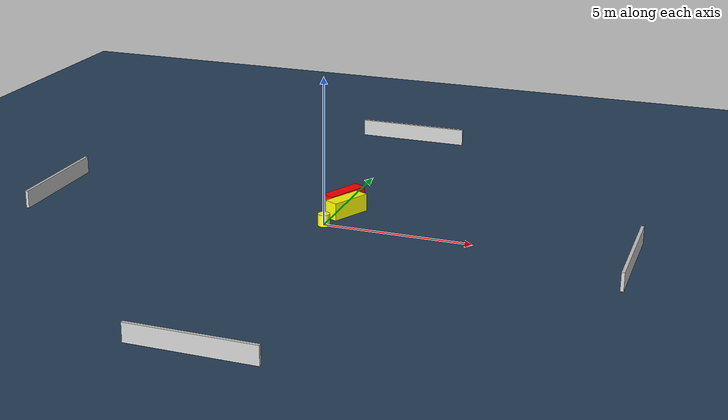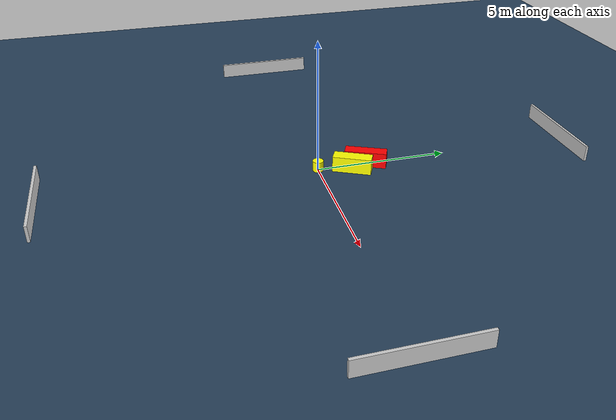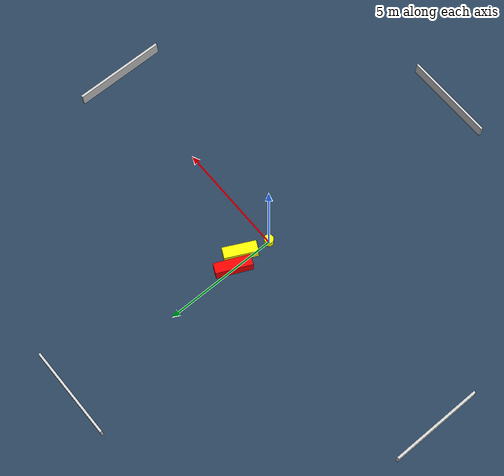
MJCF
<?xml version="1.0" ?>
<mujoco model="generated_environment">
  <option timestep="0.01" integrator="RK4" cone="elliptic"/>
  <default>
    <geom density="1"/>
  </default>
  <asset>
    <texture builtin="gradient" height="3072" name="skybox" rgb1="0.3 0.5 0.7" rgb2="0 0 0" type="skybox" width="512"/>
    <texture builtin="checker" height="300" name="groundplane" rgb1="0.2 0.3 0.4" rgb2="0.1 0.2 0.3" type="2d" width="300"/>
    <material name="groundplane" reflectance="0.2" texrepeat="5 5" texture="groundplane"/>
  </asset>
  <worldbody>
    <light dir="0 0 -1" directional="true" pos="0 0 1.5"/>
    <geom condim="3" friction="0.5 0.005 0.001" material="groundplane" name="floor" pos="0 0 0" size="0 0 0.05" type="plane"/>
    <body name="walls">
      <geom name="wall_1" condim="4" pos="-10.0 0.0 0.3" rgba="0.800000011920929 0.800000011920929 0.800000011920929 1.0" size="0.05 2.0 0.3" type="box"/>
      <geom name="wall_2" condim="4" pos="10.0 0.0 0.3" rgba="0.800000011920929 0.800000011920929 0.800000011920929 1.0" size="0.05 2.0 0.3" type="box"/>
      <geom name="wall_3" condim="4" pos="0.0 -10.0 0.3" rgba="0.800000011920929 0.800000011920929 0.800000011920929 1.0" size="2.0 0.05 0.3" type="box"/>
      <geom name="wall_4" condim="4" pos="0.0 10.0 0.3" rgba="0.800000011920929 0.800000011920929 0.800000011920929 1.0" size="2.0 0.05 0.3" type="box"/>
    </body>
    <body name="robot">
      <joint name="joint_x" type="slide" pos="0 0 0" axis="1 0 0"/>
      <joint name="joint_y" type="slide" pos="0 0 0" axis="0 1 0"/>
      <geom name="robot" type="cylinder" pos="0.0 0.0 0.2" size="0.2 0.2 0.0" mass="5.0" friction="1.0 0.005 0.0001" condim="4" rgba="1.0 1.0 0.0 1.0"/>
    </body>
    <body name="obstacle_1_movable">
      <geom name="obstacle_1_movable" condim="4" pos="0.33789912320840715 1.2337529665125466 0.3" euler="0 0 63.32743613911027" friction="0.0 0.005 0.001" rgba="1.0 1.0 0.0 1.0" size="0.7176974368703191 0.24090421854009356 0.3" type="box" mass="0.1"/>
      <joint type="free"/>
    </body>
    <body name="obstacle_2_static">
      <geom name="obstacle_2_static" condim="4" pos="0.03394604760259374 1.8480525675583566 0.3" euler="0 0 65.0686736328376" friction="0.0 0.005 0.001" rgba="1.0 0.0 0.0 1.0" size="0.7840967067430022 0.2259148545382036 0.3" type="box"/>
    </body>
  </worldbody>
  <actuator>
    <motor name="actuator_x" joint="joint_x" gear="1" ctrlrange="-1 1"/>
    <motor name="actuator_y" joint="joint_y" gear="1" ctrlrange="-1 1"/>
  </actuator>
</mujoco>
